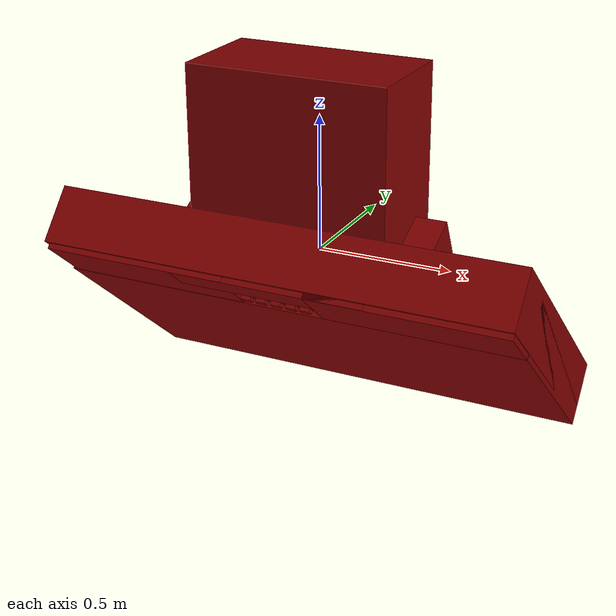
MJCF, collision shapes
<?xml version='1.0' encoding='UTF-8'?>
<mujoco model="model">
  <compiler angle="radian"/>
  <asset>
    <mesh file="visuals/Body001.obj" name="Body001_vis"/>
    <mesh file="visuals/Button001.obj" name="Button001_vis"/>
    <mesh file="visuals/Button002.obj" name="Button002_vis"/>
    <mesh file="visuals/Button003.obj" name="Button003_vis"/>
    <mesh file="visuals/Button004.obj" name="Button004_vis"/>
    <mesh file="visuals/Button005.obj" name="Button005_vis"/>
    <texture file="visuals/T_BC001.png" name="Body001_material" type="2d"/>
    <material name="Body001_material" rgba="1 1 1 1.0" texture="Body001_material" shininess="7" specular="7"/>
    <texture file="visuals/T_BC001.png" name="Button001_material" type="2d"/>
    <material name="Button001_material" rgba="1 1 1 1.0" texture="Button001_material" shininess="1" specular="1"/>
    <texture file="visuals/T_BC001.png" name="Button002_material" type="2d"/>
    <material name="Button002_material" rgba="1 1 1 1.0" texture="Button002_material" shininess="1" specular="1"/>
    <texture file="visuals/T_BC001.png" name="Button003_material" type="2d"/>
    <material name="Button003_material" rgba="1 1 1 1.0" texture="Button003_material" shininess="1" specular="1"/>
    <texture file="visuals/T_BC001.png" name="Button004_material" type="2d"/>
    <material name="Button004_material" rgba="1 1 1 1.0" texture="Button004_material" shininess="1" specular="1"/>
    <texture file="visuals/T_BC001.png" name="Button005_material" type="2d"/>
    <material name="Button005_material" rgba="1 1 1 1.0" texture="Button005_material" shininess="1" specular="1"/>
  </asset>
  <default>
    <default class="visual">
      <geom conaffinity="0" contype="0" group="1" type="mesh"/>
    </default>
    <default class="collision">
      <geom group="0" rgba="0.5 0 0 0.5"/>
    </default>
    <default class="spawn">
      <geom group="0" rgba="1 1 1 0.5" contype="0" conaffinity="0"/>
      <site group="0" rgba="1 1 1 0.5"/>
    </default>
    <default class="region">
      <geom group="1" conaffinity="0" contype="0" rgba="0 1 0 0"/>
    </default>
  </default>
  <worldbody>
    <body>
      <body name="object">
        <geom mesh="Body001_vis" type="mesh" solimp="0.998 0.998 0.001" solref="0.001 1" density="100" friction="0.95 0.3 0.1" class="visual" material="Body001_material"/>
        <geom class="collision" type="box" pos="-0.0031150272116065025 -0.07407324016094208 0.3499411344528198" size="0.3692402243614197 0.19691552221775055 0.35771921277046204" quat="1.0 0.0 0.0 0.0"/>
        <geom class="collision" type="box" pos="-0.00990261696279049 0.06549641489982605 -0.25585269927978516" size="0.8868516683578491 0.11023171991109848 0.5636211633682251" quat="0.9093489646911621 0.41603416204452515 -9.237816099882774e-17 3.578918748733433e-24"/>
        <geom class="collision" type="box" pos="-0.0028101811185479164 0.01879153400659561 -0.07887080311775208" size="0.48391255736351013 0.10364170372486115 0.23740963637828827" quat="0.974094033241272 0.22614340484142303 -5.021392629313764e-17 2.0934212862142137e-24"/>
        <geom class="collision" type="box" pos="-0.00990261696279049 0.13650816679000854 -0.34857046604156494" size="0.8868516683578491 0.10854648053646088 0.44926902651786804" quat="0.9093489646911621 0.41603416204452515 -9.237816099882774e-17 3.578918748733433e-24"/>
        <geom class="collision" type="box" pos="-0.5234460830688477 0.05477681756019592 -0.2770412564277649" size="0.35763707756996155 0.10786305367946625 0.557878315448761" quat="0.9093489646911621 0.41603416204452515 -9.237816099882774e-17 3.578918748733433e-24"/>
        <geom class="collision" type="box" pos="0.508306622505188 0.054386623203754425 -0.27749279141426086" size="0.3669728636741638 0.10845984518527985 0.557878315448761" quat="0.9093489646911621 0.41603416204452515 -9.237816099882774e-17 3.578918748733433e-24"/>
        <geom class="collision" type="box" pos="-0.005748778581619263 -0.32530397176742554 0.05114380270242691" size="0.3669728636741638 0.1080535352230072 0.055716242641210556" quat="0.9093489646911621 0.41603416204452515 -9.237816099882774e-17 3.578918748733433e-24"/>
        <body name="Button001">
          <joint axis="-7.499681992804289e-17 0.6622443199157715 0.7492879033088684" pos="-0.12735030055046082 -0.32019782066345215 -0.09419888257980347" limited="true" name="Button001_joint" range="0.0 0.004" type="slide" damping="1" frictionloss="1" armature=".01" stiffness="0.05"/>
          <geom mesh="Button001_vis" type="mesh" solimp="0.998 0.998 0.001" solref="0.001 1" density="100" friction="0.95 0.3 0.1" class="visual" material="Button001_material"/>
          <geom class="collision" type="box" pos="-0.12739282846450806 -0.3202287256717682 -0.09421539306640625" size="0.018432587385177612 0.008389816619455814 0.01323755644261837" quat="0.9088212251663208 0.41718584299087524 -9.263385906978013e-17 6.2742698962695455e-24"/>
        </body>
        <body name="Button002">
          <joint axis="-7.499681992804289e-17 0.6622443199157715 0.7492879033088684" pos="-0.07062910497188568 -0.32019999623298645 -0.09418274462223053" limited="true" name="Button002_joint" range="0.0 0.004" type="slide" damping="1" frictionloss="1" armature=".01" stiffness="0.05"/>
          <geom mesh="Button002_vis" type="mesh" solimp="0.998 0.998 0.001" solref="0.001 1" density="100" friction="0.95 0.3 0.1" class="visual" material="Button002_material"/>
          <geom class="collision" type="box" pos="-0.07063400745391846 -0.3202287256717682 -0.09421539306640625" size="0.018432587385177612 0.008389816619455814 0.01323755644261837" quat="0.9088212251663208 0.41718584299087524 -9.263385906978013e-17 6.2742698962695455e-24"/>
        </body>
        <body name="Button003">
          <joint axis="-7.499681992804289e-17 0.6622443199157715 0.7492879033088684" pos="-0.012332904152572155 -0.3201996684074402 -0.09418508410453796" limited="true" name="Button003_joint" range="0.0 0.004" type="slide" damping="1" frictionloss="1" armature=".01" stiffness="0.05"/>
          <geom mesh="Button003_vis" type="mesh" solimp="0.998 0.998 0.001" solref="0.001 1" density="100" friction="0.95 0.3 0.1" class="visual" material="Button003_material"/>
          <geom class="collision" type="box" pos="-0.012119770050048828 -0.3202287256717682 -0.09421539306640625" size="0.018432587385177612 0.008389816619455814 0.01323755644261837" quat="0.9088212251663208 0.41718584299087524 -9.263385906978013e-17 6.2742698962695455e-24"/>
        </body>
        <body name="Button004">
          <joint axis="-7.499681992804289e-17 0.6622443199157715 0.7492879033088684" pos="0.04577164351940155 -0.32019999623298645 -0.09418261051177979" limited="true" name="Button004_joint" range="0.0 0.004" type="slide" damping="1" frictionloss="1" armature=".01" stiffness="0.05"/>
          <geom mesh="Button004_vis" type="mesh" solimp="0.998 0.998 0.001" solref="0.001 1" density="100" friction="0.95 0.3 0.1" class="visual" material="Button004_material"/>
          <geom class="collision" type="box" pos="0.04599641636013985 -0.3202287256717682 -0.09421539306640625" size="0.018432587385177612 0.008389816619455814 0.01323755644261837" quat="0.9088212251663208 0.41718584299087524 -9.263385906978013e-17 6.2742698962695455e-24"/>
        </body>
        <body name="Button005">
          <joint axis="-7.499681992804289e-17 0.6622443199157715 0.7492879033088684" pos="0.09996262937784195 -0.3201977014541626 -0.09419995546340942" limited="true" name="Button005_joint" range="0.0 0.004" type="slide" damping="1" frictionloss="1" armature=".01" stiffness="0.05"/>
          <geom mesh="Button005_vis" type="mesh" solimp="0.998 0.998 0.001" solref="0.001 1" density="100" friction="0.95 0.3 0.1" class="visual" material="Button005_material"/>
          <geom class="collision" type="box" pos="0.10003253072500229 -0.3202287256717682 -0.09421539306640625" size="0.018432587385177612 0.008389816619455814 0.01323755644261837" quat="0.9088212251663208 0.41718584299087524 -9.263385906978013e-17 6.2742698962695455e-24"/>
        </body>
        <geom class="region" name="reg_main" type="box" pos="0.0 0.0 0.0" size="0.8735866546630859 0.4346318542957306 0.7052332162857056"/>
      </body>
    </body>
  </worldbody>
  <actuator>
    <motor name="Button001_joint_actuator" joint="Button001_joint" gear="0.5"/>
    <motor name="Button002_joint_actuator" joint="Button002_joint" gear="0.5"/>
    <motor name="Button003_joint_actuator" joint="Button003_joint" gear="0.5"/>
    <motor name="Button004_joint_actuator" joint="Button004_joint" gear="0.5"/>
    <motor name="Button005_joint_actuator" joint="Button005_joint" gear="0.5"/>
  </actuator>
</mujoco>
